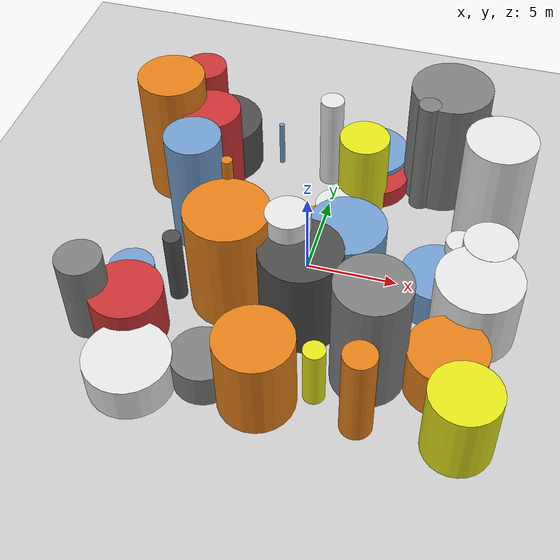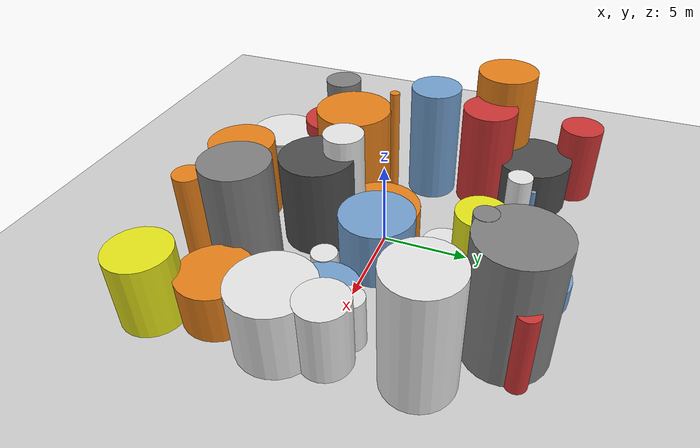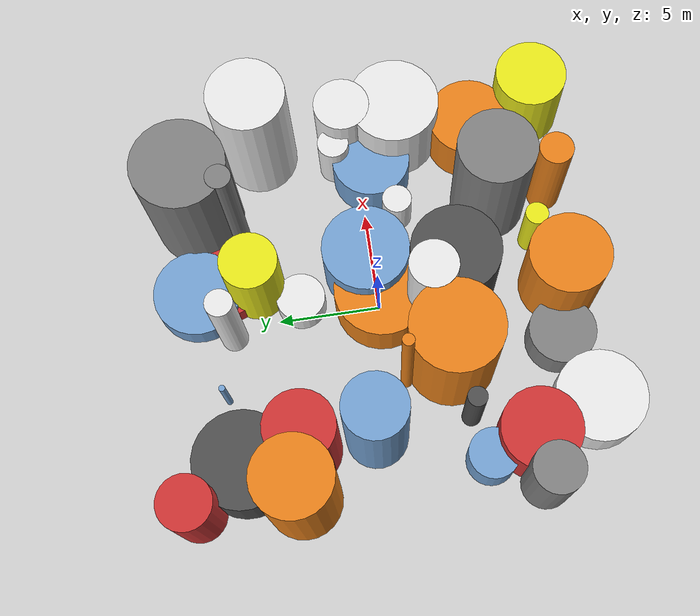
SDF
<?xml version='1.0'?>
<sdf version='1.6'>
  <world name='default'>
    <!-- Sun light -->
    <light name='sun' type='directional'>
      <cast_shadows>1</cast_shadows>
      <pose>0 0 10 0 0 0</pose>
      <diffuse>0.8 0.8 0.8 1</diffuse>
      <specular>0.2 0.2 0.2 1</specular>
      <attenuation>
        <range>1000</range>
        <constant>0.9</constant>
        <linear>0.01</linear>
        <quadratic>0.001</quadratic>
      </attenuation>
      <direction>-0.5 0.1 -0.9</direction>
    </light>

    <!-- Ground plane -->
    <model name='ground_plane'>
      <static>1</static>
      <link name='link'>
        <collision name='collision'>
          <geometry>
            <plane>
              <normal>0 0 1</normal>
              <size>100 100</size>
            </plane>
          </geometry>
          <surface>
            <contact>
              <collide_bitmask>65535</collide_bitmask>
              <ode/>
            </contact>
            <friction>
              <ode>
                <mu>100</mu>
                <mu2>50</mu2>
              </ode>
              <torsional><ode/></torsional>
            </friction>
            <bounce/>
          </surface>
          <max_contacts>10</max_contacts>
        </collision>
        <visual name='visual'>
          <cast_shadows>0</cast_shadows>
          <geometry>
            <plane>
              <normal>0 0 1</normal>
              <size>100 100</size>
            </plane>
          </geometry>
          <material>
            <script>
              <uri>file://media/materials/scripts/gazebo.material</uri>
              <n>Gazebo/Grey</n>
            </script>
          </material>
        </visual>
      </link>
    </model>

    <!-- Environment -->
    <magnetic_field>6e-06 2.3e-05 -4.2e-05</magnetic_field>
    <atmosphere type='adiabatic'/>
    <physics name='default_physics' default='0' type='ode'>
      <gravity>0 0 -9.8</gravity>
      <max_step_size>0.004</max_step_size>
      <real_time_factor>1</real_time_factor>
      <real_time_update_rate>250</real_time_update_rate>
    </physics>
    <scene>
      <ambient>0.4 0.4 0.4 1</ambient>
      <background>0.7 0.7 0.7 1</background>
      <shadows>1</shadows>
    </scene>
    <wind/>
    <spherical_coordinates>
      <surface_model>EARTH_WGS84</surface_model>
      <latitude_deg>0</latitude_deg>
      <longitude_deg>0</longitude_deg>
      <elevation>0</elevation>
      <heading_deg>0</heading_deg>
    </spherical_coordinates>

    <!-- ============ OBSTACLES (38) ============ -->
    <model name='obs_00'>
      <static>1</static>
      <link name='link'>
        <visual name='visual'>
          <geometry>
            <cylinder>
              <radius>1.2027</radius>
              <length>1.4261</length>
            </cylinder>
          </geometry>
          <material>
            <script>
              <n>Gazebo/White</n>
              <uri>file://media/materials/scripts/gazebo.material</uri>
            </script>
            <ambient>0.9 0.9 0.9 1</ambient>
          </material>
        </visual>
        <collision name='collision'>
          <geometry>
            <cylinder>
              <radius>1.2027</radius>
              <length>1.4261</length>
            </cylinder>
          </geometry>
          <max_contacts>10</max_contacts>
          <surface>
            <contact><ode/></contact>
            <bounce/>
            <friction>
              <ode><mu>1</mu><mu2>1</mu2></ode>
              <torsional><ode/></torsional>
            </friction>
          </surface>
        </collision>
      </link>
      <pose>0.7042 3.7722 0.7131 0 0 2.5689</pose>
    </model>

    <model name='obs_01'>
      <static>1</static>
      <link name='link'>
        <visual name='visual'>
          <geometry>
            <cylinder>
              <radius>1.9013</radius>
              <length>7.0422</length>
            </cylinder>
          </geometry>
          <material>
            <script>
              <n>Gazebo/White</n>
              <uri>file://media/materials/scripts/gazebo.material</uri>
            </script>
            <ambient>0.9 0.9 0.9 1</ambient>
          </material>
        </visual>
        <collision name='collision'>
          <geometry>
            <cylinder>
              <radius>1.9013</radius>
              <length>7.0422</length>
            </cylinder>
          </geometry>
          <max_contacts>10</max_contacts>
          <surface>
            <contact><ode/></contact>
            <bounce/>
            <friction>
              <ode><mu>1</mu><mu2>1</mu2></ode>
              <torsional><ode/></torsional>
            </friction>
          </surface>
        </collision>
      </link>
      <pose>9.0936 4.9451 3.5211 0 0 2.9676</pose>
    </model>

    <model name='obs_02'>
      <static>1</static>
      <link name='link'>
        <visual name='visual'>
          <geometry>
            <cylinder>
              <radius>0.1523</radius>
              <length>2.8862</length>
            </cylinder>
          </geometry>
          <material>
            <script>
              <n>Gazebo/Blue</n>
              <uri>file://media/materials/scripts/gazebo.material</uri>
            </script>
            <ambient>0.447 0.624 0.812 1</ambient>
          </material>
        </visual>
        <collision name='collision'>
          <geometry>
            <cylinder>
              <radius>0.1523</radius>
              <length>2.8862</length>
            </cylinder>
          </geometry>
          <max_contacts>10</max_contacts>
          <surface>
            <contact><ode/></contact>
            <bounce/>
            <friction>
              <ode><mu>1</mu><mu2>1</mu2></ode>
              <torsional><ode/></torsional>
            </friction>
          </surface>
        </collision>
      </link>
      <pose>-3.6597 7.8682 1.4431 0 0 0.0077</pose>
    </model>

    <model name='obs_03'>
      <static>1</static>
      <link name='link'>
        <visual name='visual'>
          <geometry>
            <cylinder>
              <radius>0.8286</radius>
              <length>5.6083</length>
            </cylinder>
          </geometry>
          <material>
            <script>
              <n>Gazebo/Orange</n>
              <uri>file://media/materials/scripts/gazebo.material</uri>
            </script>
            <ambient>0.9 0.5 0.1 1</ambient>
          </material>
        </visual>
        <collision name='collision'>
          <geometry>
            <cylinder>
              <radius>0.8286</radius>
              <length>5.6083</length>
            </cylinder>
          </geometry>
          <max_contacts>10</max_contacts>
          <surface>
            <contact><ode/></contact>
            <bounce/>
            <friction>
              <ode><mu>1</mu><mu2>1</mu2></ode>
              <torsional><ode/></torsional>
            </friction>
          </surface>
        </collision>
      </link>
      <pose>4.8757 -9.2763 2.8042 0 0 2.5808</pose>
    </model>

    <model name='obs_04'>
      <static>1</static>
      <link name='link'>
        <visual name='visual'>
          <geometry>
            <cylinder>
              <radius>0.7316</radius>
              <length>2.3371</length>
            </cylinder>
          </geometry>
          <material>
            <script>
              <n>Gazebo/White</n>
              <uri>file://media/materials/scripts/gazebo.material</uri>
            </script>
            <ambient>0.9 0.9 0.9 1</ambient>
          </material>
        </visual>
        <collision name='collision'>
          <geometry>
            <cylinder>
              <radius>0.7316</radius>
              <length>2.3371</length>
            </cylinder>
          </geometry>
          <max_contacts>10</max_contacts>
          <surface>
            <contact><ode/></contact>
            <bounce/>
            <friction>
              <ode><mu>1</mu><mu2>1</mu2></ode>
              <torsional><ode/></torsional>
            </friction>
          </surface>
        </collision>
      </link>
      <pose>4.8049 -1.6196 1.1686 0 0 2.0123</pose>
    </model>

    <model name='obs_05'>
      <static>1</static>
      <link name='link'>
        <visual name='visual'>
          <geometry>
            <cylinder>
              <radius>1.8842</radius>
              <length>1.0901</length>
            </cylinder>
          </geometry>
          <material>
            <script>
              <n>Gazebo/Red</n>
              <uri>file://media/materials/scripts/gazebo.material</uri>
            </script>
            <ambient>0.8 0.2 0.2 1</ambient>
          </material>
        </visual>
        <collision name='collision'>
          <geometry>
            <cylinder>
              <radius>1.8842</radius>
              <length>1.0901</length>
            </cylinder>
          </geometry>
          <max_contacts>10</max_contacts>
          <surface>
            <contact><ode/></contact>
            <bounce/>
            <friction>
              <ode><mu>1</mu><mu2>1</mu2></ode>
              <torsional><ode/></torsional>
            </friction>
          </surface>
        </collision>
      </link>
      <pose>2.2570 7.2661 0.5451 0 0 1.5188</pose>
    </model>

    <model name='obs_06'>
      <static>1</static>
      <link name='link'>
        <visual name='visual'>
          <geometry>
            <cylinder>
              <radius>2.2123</radius>
              <length>2.1150</length>
            </cylinder>
          </geometry>
          <material>
            <script>
              <n>Gazebo/White</n>
              <uri>file://media/materials/scripts/gazebo.material</uri>
            </script>
            <ambient>0.9 0.9 0.9 1</ambient>
          </material>
        </visual>
        <collision name='collision'>
          <geometry>
            <cylinder>
              <radius>2.2123</radius>
              <length>2.1150</length>
            </cylinder>
          </geometry>
          <max_contacts>10</max_contacts>
          <surface>
            <contact><ode/></contact>
            <bounce/>
            <friction>
              <ode><mu>1</mu><mu2>1</mu2></ode>
              <torsional><ode/></torsional>
            </friction>
          </surface>
        </collision>
      </link>
      <pose>-6.4150 -9.6980 1.0575 0 0 2.1994</pose>
    </model>

    <model name='obs_07'>
      <static>1</static>
      <link name='link'>
        <visual name='visual'>
          <geometry>
            <cylinder>
              <radius>0.5652</radius>
              <length>4.6855</length>
            </cylinder>
          </geometry>
          <material>
            <script>
              <n>Gazebo/Red</n>
              <uri>file://media/materials/scripts/gazebo.material</uri>
            </script>
            <ambient>0.8 0.2 0.2 1</ambient>
          </material>
        </visual>
        <collision name='collision'>
          <geometry>
            <cylinder>
              <radius>0.5652</radius>
              <length>4.6855</length>
            </cylinder>
          </geometry>
          <max_contacts>10</max_contacts>
          <surface>
            <contact><ode/></contact>
            <bounce/>
            <friction>
              <ode><mu>1</mu><mu2>1</mu2></ode>
              <torsional><ode/></torsional>
            </friction>
          </surface>
        </collision>
      </link>
      <pose>7.8206 9.2609 2.3427 0 0 1.3193</pose>
    </model>

    <model name='obs_08'>
      <static>1</static>
      <link name='link'>
        <visual name='visual'>
          <geometry>
            <cylinder>
              <radius>1.3919</radius>
              <length>4.0744</length>
            </cylinder>
          </geometry>
          <material>
            <script>
              <n>Gazebo/White</n>
              <uri>file://media/materials/scripts/gazebo.material</uri>
            </script>
            <ambient>0.9 0.9 0.9 1</ambient>
          </material>
        </visual>
        <collision name='collision'>
          <geometry>
            <cylinder>
              <radius>1.3919</radius>
              <length>4.0744</length>
            </cylinder>
          </geometry>
          <max_contacts>10</max_contacts>
          <surface>
            <contact><ode/></contact>
            <bounce/>
            <friction>
              <ode><mu>1</mu><mu2>1</mu2></ode>
              <torsional><ode/></torsional>
            </friction>
          </surface>
        </collision>
      </link>
      <pose>9.4860 0.4892 2.0372 0 0 3.0021</pose>
    </model>

    <model name='obs_09'>
      <static>1</static>
      <link name='link'>
        <visual name='visual'>
          <geometry>
            <cylinder>
              <radius>0.4713</radius>
              <length>4.3853</length>
            </cylinder>
          </geometry>
          <material>
            <script>
              <n>Gazebo/DarkGrey</n>
              <uri>file://media/materials/scripts/gazebo.material</uri>
            </script>
            <ambient>0.3 0.3 0.3 1</ambient>
          </material>
        </visual>
        <collision name='collision'>
          <geometry>
            <cylinder>
              <radius>0.4713</radius>
              <length>4.3853</length>
            </cylinder>
          </geometry>
          <max_contacts>10</max_contacts>
          <surface>
            <contact><ode/></contact>
            <bounce/>
            <friction>
              <ode><mu>1</mu><mu2>1</mu2></ode>
              <torsional><ode/></torsional>
            </friction>
          </surface>
        </collision>
      </link>
      <pose>-6.1179 -3.6463 2.1926 0 0 0.9460</pose>
    </model>

    <model name='obs_10'>
      <static>1</static>
      <link name='link'>
        <visual name='visual'>
          <geometry>
            <cylinder>
              <radius>0.6115</radius>
              <length>7.2085</length>
            </cylinder>
          </geometry>
          <material>
            <script>
              <n>Gazebo/Grey</n>
              <uri>file://media/materials/scripts/gazebo.material</uri>
            </script>
            <ambient>0.5 0.5 0.5 1</ambient>
          </material>
        </visual>
        <collision name='collision'>
          <geometry>
            <cylinder>
              <radius>0.6115</radius>
              <length>7.2085</length>
            </cylinder>
          </geometry>
          <max_contacts>10</max_contacts>
          <surface>
            <contact><ode/></contact>
            <bounce/>
            <friction>
              <ode><mu>1</mu><mu2>1</mu2></ode>
              <torsional><ode/></torsional>
            </friction>
          </surface>
        </collision>
      </link>
      <pose>5.0071 6.5781 3.6042 0 0 2.8486</pose>
    </model>

    <model name='obs_11'>
      <static>1</static>
      <link name='link'>
        <visual name='visual'>
          <geometry>
            <cylinder>
              <radius>1.6394</radius>
              <length>6.1997</length>
            </cylinder>
          </geometry>
          <material>
            <script>
              <n>Gazebo/Red</n>
              <uri>file://media/materials/scripts/gazebo.material</uri>
            </script>
            <ambient>0.8 0.2 0.2 1</ambient>
          </material>
        </visual>
        <collision name='collision'>
          <geometry>
            <cylinder>
              <radius>1.6394</radius>
              <length>6.1997</length>
            </cylinder>
          </geometry>
          <max_contacts>10</max_contacts>
          <surface>
            <contact><ode/></contact>
            <bounce/>
            <friction>
              <ode><mu>1</mu><mu2>1</mu2></ode>
              <torsional><ode/></torsional>
            </friction>
          </surface>
        </collision>
      </link>
      <pose>-6.6351 4.3709 3.0999 0 0 0.3177</pose>
    </model>

    <model name='obs_12'>
      <static>1</static>
      <link name='link'>
        <visual name='visual'>
          <geometry>
            <cylinder>
              <radius>2.2417</radius>
              <length>4.0628</length>
            </cylinder>
          </geometry>
          <material>
            <script>
              <n>Gazebo/White</n>
              <uri>file://media/materials/scripts/gazebo.material</uri>
            </script>
            <ambient>0.9 0.9 0.9 1</ambient>
          </material>
        </visual>
        <collision name='collision'>
          <geometry>
            <cylinder>
              <radius>2.2417</radius>
              <length>4.0628</length>
            </cylinder>
          </geometry>
          <max_contacts>10</max_contacts>
          <surface>
            <contact><ode/></contact>
            <bounce/>
            <friction>
              <ode><mu>1</mu><mu2>1</mu2></ode>
              <torsional><ode/></torsional>
            </friction>
          </surface>
        </collision>
      </link>
      <pose>9.3354 -2.1145 2.0314 0 0 3.0868</pose>
    </model>

    <model name='obs_13'>
      <static>1</static>
      <link name='link'>
        <visual name='visual'>
          <geometry>
            <cylinder>
              <radius>2.0413</radius>
              <length>2.8706</length>
            </cylinder>
          </geometry>
          <material>
            <script>
              <n>Gazebo/Orange</n>
              <uri>file://media/materials/scripts/gazebo.material</uri>
            </script>
            <ambient>0.9 0.5 0.1 1</ambient>
          </material>
        </visual>
        <collision name='collision'>
          <geometry>
            <cylinder>
              <radius>2.0413</radius>
              <length>2.8706</length>
            </cylinder>
          </geometry>
          <max_contacts>10</max_contacts>
          <surface>
            <contact><ode/></contact>
            <bounce/>
            <friction>
              <ode><mu>1</mu><mu2>1</mu2></ode>
              <torsional><ode/></torsional>
            </friction>
          </surface>
        </collision>
      </link>
      <pose>8.4927 -5.8458 1.4353 0 0 2.9599</pose>
    </model>

    <model name='obs_14'>
      <static>1</static>
      <link name='link'>
        <visual name='visual'>
          <geometry>
            <cylinder>
              <radius>2.3416</radius>
              <length>2.5708</length>
            </cylinder>
          </geometry>
          <material>
            <script>
              <n>Gazebo/Orange</n>
              <uri>file://media/materials/scripts/gazebo.material</uri>
            </script>
            <ambient>0.9 0.5 0.1 1</ambient>
          </material>
        </visual>
        <collision name='collision'>
          <geometry>
            <cylinder>
              <radius>2.3416</radius>
              <length>2.5708</length>
            </cylinder>
          </geometry>
          <max_contacts>10</max_contacts>
          <surface>
            <contact><ode/></contact>
            <bounce/>
            <friction>
              <ode><mu>1</mu><mu2>1</mu2></ode>
              <torsional><ode/></torsional>
            </friction>
          </surface>
        </collision>
      </link>
      <pose>0.1953 -0.2044 1.2854 0 0 2.1577</pose>
    </model>

    <model name='obs_15'>
      <static>1</static>
      <link name='link'>
        <visual name='visual'>
          <geometry>
            <cylinder>
              <radius>1.9770</radius>
              <length>4.8441</length>
            </cylinder>
          </geometry>
          <material>
            <script>
              <n>Gazebo/Orange</n>
              <uri>file://media/materials/scripts/gazebo.material</uri>
            </script>
            <ambient>0.9 0.5 0.1 1</ambient>
          </material>
        </visual>
        <collision name='collision'>
          <geometry>
            <cylinder>
              <radius>1.9770</radius>
              <length>4.8441</length>
            </cylinder>
          </geometry>
          <max_contacts>10</max_contacts>
          <surface>
            <contact><ode/></contact>
            <bounce/>
            <friction>
              <ode><mu>1</mu><mu2>1</mu2></ode>
              <torsional><ode/></torsional>
            </friction>
          </surface>
        </collision>
      </link>
      <pose>-0.1241 -9.0643 2.4220 0 0 2.5968</pose>
    </model>

    <model name='obs_16'>
      <static>1</static>
      <link name='link'>
        <visual name='visual'>
          <geometry>
            <cylinder>
              <radius>2.3058</radius>
              <length>3.0902</length>
            </cylinder>
          </geometry>
          <material>
            <script>
              <n>Gazebo/DarkGrey</n>
              <uri>file://media/materials/scripts/gazebo.material</uri>
            </script>
            <ambient>0.3 0.3 0.3 1</ambient>
          </material>
        </visual>
        <collision name='collision'>
          <geometry>
            <cylinder>
              <radius>2.3058</radius>
              <length>3.0902</length>
            </cylinder>
          </geometry>
          <max_contacts>10</max_contacts>
          <surface>
            <contact><ode/></contact>
            <bounce/>
            <friction>
              <ode><mu>1</mu><mu2>1</mu2></ode>
              <torsional><ode/></torsional>
            </friction>
          </surface>
        </collision>
      </link>
      <pose>-7.1207 7.2953 1.5451 0 0 0.1150</pose>
    </model>

    <model name='obs_17'>
      <static>1</static>
      <link name='link'>
        <visual name='visual'>
          <geometry>
            <cylinder>
              <radius>1.9365</radius>
              <length>3.0745</length>
            </cylinder>
          </geometry>
          <material>
            <script>
              <n>Gazebo/Red</n>
              <uri>file://media/materials/scripts/gazebo.material</uri>
            </script>
            <ambient>0.8 0.2 0.2 1</ambient>
          </material>
        </visual>
        <collision name='collision'>
          <geometry>
            <cylinder>
              <radius>1.9365</radius>
              <length>3.0745</length>
            </cylinder>
          </geometry>
          <max_contacts>10</max_contacts>
          <surface>
            <contact><ode/></contact>
            <bounce/>
            <friction>
              <ode><mu>1</mu><mu2>1</mu2></ode>
              <torsional><ode/></torsional>
            </friction>
          </surface>
        </collision>
      </link>
      <pose>-7.6773 -6.4762 1.5373 0 0 2.5566</pose>
    </model>

    <model name='obs_18'>
      <static>1</static>
      <link name='link'>
        <visual name='visual'>
          <geometry>
            <cylinder>
              <radius>0.7812</radius>
              <length>3.0033</length>
            </cylinder>
          </geometry>
          <material>
            <script>
              <n>Gazebo/White</n>
              <uri>file://media/materials/scripts/gazebo.material</uri>
            </script>
            <ambient>0.9 0.9 0.9 1</ambient>
          </material>
        </visual>
        <collision name='collision'>
          <geometry>
            <cylinder>
              <radius>0.7812</radius>
              <length>3.0033</length>
            </cylinder>
          </geometry>
          <max_contacts>10</max_contacts>
          <surface>
            <contact><ode/></contact>
            <bounce/>
            <friction>
              <ode><mu>1</mu><mu2>1</mu2></ode>
              <torsional><ode/></torsional>
            </friction>
          </surface>
        </collision>
      </link>
      <pose>7.9636 1.1494 1.5017 0 0 0.3745</pose>
    </model>

    <model name='obs_19'>
      <static>1</static>
      <link name='link'>
        <visual name='visual'>
          <geometry>
            <cylinder>
              <radius>0.2863</radius>
              <length>7.5813</length>
            </cylinder>
          </geometry>
          <material>
            <script>
              <n>Gazebo/Orange</n>
              <uri>file://media/materials/scripts/gazebo.material</uri>
            </script>
            <ambient>0.9 0.5 0.1 1</ambient>
          </material>
        </visual>
        <collision name='collision'>
          <geometry>
            <cylinder>
              <radius>0.2863</radius>
              <length>7.5813</length>
            </cylinder>
          </geometry>
          <max_contacts>10</max_contacts>
          <surface>
            <contact><ode/></contact>
            <bounce/>
            <friction>
              <ode><mu>1</mu><mu2>1</mu2></ode>
              <torsional><ode/></torsional>
            </friction>
          </surface>
        </collision>
      </link>
      <pose>-3.9358 -0.7941 3.7907 0 0 3.0242</pose>
    </model>

    <model name='obs_20'>
      <static>1</static>
      <link name='link'>
        <visual name='visual'>
          <geometry>
            <cylinder>
              <radius>1.1628</radius>
              <length>6.5339</length>
            </cylinder>
          </geometry>
          <material>
            <script>
              <n>Gazebo/White</n>
              <uri>file://media/materials/scripts/gazebo.material</uri>
            </script>
            <ambient>0.9 0.9 0.9 1</ambient>
          </material>
        </visual>
        <collision name='collision'>
          <geometry>
            <cylinder>
              <radius>1.1628</radius>
              <length>6.5339</length>
            </cylinder>
          </geometry>
          <max_contacts>10</max_contacts>
          <surface>
            <contact><ode/></contact>
            <bounce/>
            <friction>
              <ode><mu>1</mu><mu2>1</mu2></ode>
              <torsional><ode/></torsional>
            </friction>
          </surface>
        </collision>
      </link>
      <pose>-0.3161 -2.5260 3.2669 0 0 2.6132</pose>
    </model>

    <model name='obs_21'>
      <static>1</static>
      <link name='link'>
        <visual name='visual'>
          <geometry>
            <cylinder>
              <radius>1.7631</radius>
              <length>4.2858</length>
            </cylinder>
          </geometry>
          <material>
            <script>
              <n>Gazebo/Yellow</n>
              <uri>file://media/materials/scripts/gazebo.material</uri>
            </script>
            <ambient>0.9 0.9 0.1 1</ambient>
          </material>
        </visual>
        <collision name='collision'>
          <geometry>
            <cylinder>
              <radius>1.7631</radius>
              <length>4.2858</length>
            </cylinder>
          </geometry>
          <max_contacts>10</max_contacts>
          <surface>
            <contact><ode/></contact>
            <bounce/>
            <friction>
              <ode><mu>1</mu><mu2>1</mu2></ode>
              <torsional><ode/></torsional>
            </friction>
          </surface>
        </collision>
      </link>
      <pose>9.6809 -9.0983 2.1429 0 0 0.7169</pose>
    </model>

    <model name='obs_22'>
      <static>1</static>
      <link name='link'>
        <visual name='visual'>
          <geometry>
            <cylinder>
              <radius>1.6397</radius>
              <length>2.0125</length>
            </cylinder>
          </geometry>
          <material>
            <script>
              <n>Gazebo/Grey</n>
              <uri>file://media/materials/scripts/gazebo.material</uri>
            </script>
            <ambient>0.5 0.5 0.5 1</ambient>
          </material>
        </visual>
        <collision name='collision'>
          <geometry>
            <cylinder>
              <radius>1.6397</radius>
              <length>2.0125</length>
            </cylinder>
          </geometry>
          <max_contacts>10</max_contacts>
          <surface>
            <contact><ode/></contact>
            <bounce/>
            <friction>
              <ode><mu>1</mu><mu2>1</mu2></ode>
              <torsional><ode/></torsional>
            </friction>
          </surface>
        </collision>
      </link>
      <pose>-2.9750 -8.5227 1.0062 0 0 0.0679</pose>
    </model>

    <model name='obs_23'>
      <static>1</static>
      <link name='link'>
        <visual name='visual'>
          <geometry>
            <cylinder>
              <radius>0.5654</radius>
              <length>3.6439</length>
            </cylinder>
          </geometry>
          <material>
            <script>
              <n>Gazebo/Yellow</n>
              <uri>file://media/materials/scripts/gazebo.material</uri>
            </script>
            <ambient>0.9 0.9 0.1 1</ambient>
          </material>
        </visual>
        <collision name='collision'>
          <geometry>
            <cylinder>
              <radius>0.5654</radius>
              <length>3.6439</length>
            </cylinder>
          </geometry>
          <max_contacts>10</max_contacts>
          <surface>
            <contact><ode/></contact>
            <bounce/>
            <friction>
              <ode><mu>1</mu><mu2>1</mu2></ode>
              <torsional><ode/></torsional>
            </friction>
          </surface>
        </collision>
      </link>
      <pose>2.5008 -8.1127 1.8220 0 0 0.2993</pose>
    </model>

    <model name='obs_24'>
      <static>1</static>
      <link name='link'>
        <visual name='visual'>
          <geometry>
            <cylinder>
              <radius>2.2030</radius>
              <length>6.5203</length>
            </cylinder>
          </geometry>
          <material>
            <script>
              <n>Gazebo/Orange</n>
              <uri>file://media/materials/scripts/gazebo.material</uri>
            </script>
            <ambient>0.9 0.5 0.1 1</ambient>
          </material>
        </visual>
        <collision name='collision'>
          <geometry>
            <cylinder>
              <radius>2.2030</radius>
              <length>6.5203</length>
            </cylinder>
          </geometry>
          <max_contacts>10</max_contacts>
          <surface>
            <contact><ode/></contact>
            <bounce/>
            <friction>
              <ode><mu>1</mu><mu2>1</mu2></ode>
              <torsional><ode/></torsional>
            </friction>
          </surface>
        </collision>
      </link>
      <pose>-3.2700 -3.0958 3.2602 0 0 0.9233</pose>
    </model>

    <model name='obs_25'>
      <static>1</static>
      <link name='link'>
        <visual name='visual'>
          <geometry>
            <cylinder>
              <radius>1.8933</radius>
              <length>6.9933</length>
            </cylinder>
          </geometry>
          <material>
            <script>
              <n>Gazebo/Grey</n>
              <uri>file://media/materials/scripts/gazebo.material</uri>
            </script>
            <ambient>0.5 0.5 0.5 1</ambient>
          </material>
        </visual>
        <collision name='collision'>
          <geometry>
            <cylinder>
              <radius>1.8933</radius>
              <length>6.9933</length>
            </cylinder>
          </geometry>
          <max_contacts>10</max_contacts>
          <surface>
            <contact><ode/></contact>
            <bounce/>
            <friction>
              <ode><mu>1</mu><mu2>1</mu2></ode>
              <torsional><ode/></torsional>
            </friction>
          </surface>
        </collision>
      </link>
      <pose>4.7537 -6.2957 3.4967 0 0 3.0860</pose>
    </model>

    <model name='obs_26'>
      <static>1</static>
      <link name='link'>
        <visual name='visual'>
          <geometry>
            <cylinder>
              <radius>2.1480</radius>
              <length>1.4003</length>
            </cylinder>
          </geometry>
          <material>
            <script>
              <n>Gazebo/Blue</n>
              <uri>file://media/materials/scripts/gazebo.material</uri>
            </script>
            <ambient>0.447 0.624 0.812 1</ambient>
          </material>
        </visual>
        <collision name='collision'>
          <geometry>
            <cylinder>
              <radius>2.1480</radius>
              <length>1.4003</length>
            </cylinder>
          </geometry>
          <max_contacts>10</max_contacts>
          <surface>
            <contact><ode/></contact>
            <bounce/>
            <friction>
              <ode><mu>1</mu><mu2>1</mu2></ode>
              <torsional><ode/></torsional>
            </friction>
          </surface>
        </collision>
      </link>
      <pose>1.6868 8.7831 0.7002 0 0 1.0566</pose>
    </model>

    <model name='obs_27'>
      <static>1</static>
      <link name='link'>
        <visual name='visual'>
          <geometry>
            <cylinder>
              <radius>1.2719</radius>
              <length>4.7626</length>
            </cylinder>
          </geometry>
          <material>
            <script>
              <n>Gazebo/Red</n>
              <uri>file://media/materials/scripts/gazebo.material</uri>
            </script>
            <ambient>0.8 0.2 0.2 1</ambient>
          </material>
        </visual>
        <collision name='collision'>
          <geometry>
            <cylinder>
              <radius>1.2719</radius>
              <length>4.7626</length>
            </cylinder>
          </geometry>
          <max_contacts>10</max_contacts>
          <surface>
            <contact><ode/></contact>
            <bounce/>
            <friction>
              <ode><mu>1</mu><mu2>1</mu2></ode>
              <torsional><ode/></torsional>
            </friction>
          </surface>
        </collision>
      </link>
      <pose>-8.9289 9.7652 2.3813 0 0 2.6696</pose>
    </model>

    <model name='obs_28'>
      <static>1</static>
      <link name='link'>
        <visual name='visual'>
          <geometry>
            <cylinder>
              <radius>1.2059</radius>
              <length>2.1713</length>
            </cylinder>
          </geometry>
          <material>
            <script>
              <n>Gazebo/Blue</n>
              <uri>file://media/materials/scripts/gazebo.material</uri>
            </script>
            <ambient>0.447 0.624 0.812 1</ambient>
          </material>
        </visual>
        <collision name='collision'>
          <geometry>
            <cylinder>
              <radius>1.2059</radius>
              <length>2.1713</length>
            </cylinder>
          </geometry>
          <max_contacts>10</max_contacts>
          <surface>
            <contact><ode/></contact>
            <bounce/>
            <friction>
              <ode><mu>1</mu><mu2>1</mu2></ode>
              <torsional><ode/></torsional>
            </friction>
          </surface>
        </collision>
      </link>
      <pose>-8.3620 -4.1981 1.0857 0 0 1.9688</pose>
    </model>

    <model name='obs_29'>
      <static>1</static>
      <link name='link'>
        <visual name='visual'>
          <geometry>
            <cylinder>
              <radius>0.6595</radius>
              <length>5.8159</length>
            </cylinder>
          </geometry>
          <material>
            <script>
              <n>Gazebo/White</n>
              <uri>file://media/materials/scripts/gazebo.material</uri>
            </script>
            <ambient>0.9 0.9 0.9 1</ambient>
          </material>
        </visual>
        <collision name='collision'>
          <geometry>
            <cylinder>
              <radius>0.6595</radius>
              <length>5.8159</length>
            </cylinder>
          </geometry>
          <max_contacts>10</max_contacts>
          <surface>
            <contact><ode/></contact>
            <bounce/>
            <friction>
              <ode><mu>1</mu><mu2>1</mu2></ode>
              <torsional><ode/></torsional>
            </friction>
          </surface>
        </collision>
      </link>
      <pose>-0.4977 7.2854 2.9080 0 0 1.7612</pose>
    </model>

    <model name='obs_30'>
      <static>1</static>
      <link name='link'>
        <visual name='visual'>
          <geometry>
            <cylinder>
              <radius>2.1360</radius>
              <length>3.4597</length>
            </cylinder>
          </geometry>
          <material>
            <script>
              <n>Gazebo/Blue</n>
              <uri>file://media/materials/scripts/gazebo.material</uri>
            </script>
            <ambient>0.447 0.624 0.812 1</ambient>
          </material>
        </visual>
        <collision name='collision'>
          <geometry>
            <cylinder>
              <radius>2.1360</radius>
              <length>3.4597</length>
            </cylinder>
          </geometry>
          <max_contacts>10</max_contacts>
          <surface>
            <contact><ode/></contact>
            <bounce/>
            <friction>
              <ode><mu>1</mu><mu2>1</mu2></ode>
              <torsional><ode/></torsional>
            </friction>
          </surface>
        </collision>
      </link>
      <pose>2.0627 0.3149 1.7298 0 0 2.0066</pose>
    </model>

    <model name='obs_31'>
      <static>1</static>
      <link name='link'>
        <visual name='visual'>
          <geometry>
            <cylinder>
              <radius>2.2382</radius>
              <length>7.1937</length>
            </cylinder>
          </geometry>
          <material>
            <script>
              <n>Gazebo/Grey</n>
              <uri>file://media/materials/scripts/gazebo.material</uri>
            </script>
            <ambient>0.5 0.5 0.5 1</ambient>
          </material>
        </visual>
        <collision name='collision'>
          <geometry>
            <cylinder>
              <radius>2.2382</radius>
              <length>7.1937</length>
            </cylinder>
          </geometry>
          <max_contacts>10</max_contacts>
          <surface>
            <contact><ode/></contact>
            <bounce/>
            <friction>
              <ode><mu>1</mu><mu2>1</mu2></ode>
              <torsional><ode/></torsional>
            </friction>
          </surface>
        </collision>
      </link>
      <pose>5.9450 8.3547 3.5969 0 0 2.2167</pose>
    </model>

    <model name='obs_32'>
      <static>1</static>
      <link name='link'>
        <visual name='visual'>
          <geometry>
            <cylinder>
              <radius>2.1491</radius>
              <length>5.4268</length>
            </cylinder>
          </geometry>
          <material>
            <script>
              <n>Gazebo/DarkGrey</n>
              <uri>file://media/materials/scripts/gazebo.material</uri>
            </script>
            <ambient>0.3 0.3 0.3 1</ambient>
          </material>
        </visual>
        <collision name='collision'>
          <geometry>
            <cylinder>
              <radius>2.1491</radius>
              <length>5.4268</length>
            </cylinder>
          </geometry>
          <max_contacts>10</max_contacts>
          <surface>
            <contact><ode/></contact>
            <bounce/>
            <friction>
              <ode><mu>1</mu><mu2>1</mu2></ode>
              <torsional><ode/></torsional>
            </friction>
          </surface>
        </collision>
      </link>
      <pose>0.6648 -3.7595 2.7134 0 0 0.3100</pose>
    </model>

    <model name='obs_33'>
      <static>1</static>
      <link name='link'>
        <visual name='visual'>
          <geometry>
            <cylinder>
              <radius>1.3946</radius>
              <length>4.7763</length>
            </cylinder>
          </geometry>
          <material>
            <script>
              <n>Gazebo/Yellow</n>
              <uri>file://media/materials/scripts/gazebo.material</uri>
            </script>
            <ambient>0.9 0.9 0.1 1</ambient>
          </material>
        </visual>
        <collision name='collision'>
          <geometry>
            <cylinder>
              <radius>1.3946</radius>
              <length>4.7763</length>
            </cylinder>
          </geometry>
          <max_contacts>10</max_contacts>
          <surface>
            <contact><ode/></contact>
            <bounce/>
            <friction>
              <ode><mu>1</mu><mu2>1</mu2></ode>
              <torsional><ode/></torsional>
            </friction>
          </surface>
        </collision>
      </link>
      <pose>1.7143 5.8645 2.3881 0 0 0.1456</pose>
    </model>

    <model name='obs_34'>
      <static>1</static>
      <link name='link'>
        <visual name='visual'>
          <geometry>
            <cylinder>
              <radius>1.2050</radius>
              <length>4.8870</length>
            </cylinder>
          </geometry>
          <material>
            <script>
              <n>Gazebo/Grey</n>
              <uri>file://media/materials/scripts/gazebo.material</uri>
            </script>
            <ambient>0.5 0.5 0.5 1</ambient>
          </material>
        </visual>
        <collision name='collision'>
          <geometry>
            <cylinder>
              <radius>1.2050</radius>
              <length>4.8870</length>
            </cylinder>
          </geometry>
          <max_contacts>10</max_contacts>
          <surface>
            <contact><ode/></contact>
            <bounce/>
            <friction>
              <ode><mu>1</mu><mu2>1</mu2></ode>
              <torsional><ode/></torsional>
            </friction>
          </surface>
        </collision>
      </link>
      <pose>-9.8380 -6.5913 2.4435 0 0 1.8684</pose>
    </model>

    <model name='obs_35'>
      <static>1</static>
      <link name='link'>
        <visual name='visual'>
          <geometry>
            <cylinder>
              <radius>1.5143</radius>
              <length>7.1188</length>
            </cylinder>
          </geometry>
          <material>
            <script>
              <n>Gazebo/Blue</n>
              <uri>file://media/materials/scripts/gazebo.material</uri>
            </script>
            <ambient>0.447 0.624 0.812 1</ambient>
          </material>
        </visual>
        <collision name='collision'>
          <geometry>
            <cylinder>
              <radius>1.5143</radius>
              <length>7.1188</length>
            </cylinder>
          </geometry>
          <max_contacts>10</max_contacts>
          <surface>
            <contact><ode/></contact>
            <bounce/>
            <friction>
              <ode><mu>1</mu><mu2>1</mu2></ode>
              <torsional><ode/></torsional>
            </friction>
          </surface>
        </collision>
      </link>
      <pose>-6.4483 1.0172 3.5594 0 0 0.0514</pose>
    </model>

    <model name='obs_36'>
      <static>1</static>
      <link name='link'>
        <visual name='visual'>
          <geometry>
            <cylinder>
              <radius>1.8271</radius>
              <length>7.6646</length>
            </cylinder>
          </geometry>
          <material>
            <script>
              <n>Gazebo/Orange</n>
              <uri>file://media/materials/scripts/gazebo.material</uri>
            </script>
            <ambient>0.9 0.5 0.1 1</ambient>
          </material>
        </visual>
        <collision name='collision'>
          <geometry>
            <cylinder>
              <radius>1.8271</radius>
              <length>7.6646</length>
            </cylinder>
          </geometry>
          <max_contacts>10</max_contacts>
          <surface>
            <contact><ode/></contact>
            <bounce/>
            <friction>
              <ode><mu>1</mu><mu2>1</mu2></ode>
              <torsional><ode/></torsional>
            </friction>
          </surface>
        </collision>
      </link>
      <pose>-8.9582 4.8396 3.8323 0 0 0.4623</pose>
    </model>

    <model name='obs_37'>
      <static>1</static>
      <link name='link'>
        <visual name='visual'>
          <geometry>
            <cylinder>
              <radius>1.9478</radius>
              <length>2.2875</length>
            </cylinder>
          </geometry>
          <material>
            <script>
              <n>Gazebo/Blue</n>
              <uri>file://media/materials/scripts/gazebo.material</uri>
            </script>
            <ambient>0.447 0.624 0.812 1</ambient>
          </material>
        </visual>
        <collision name='collision'>
          <geometry>
            <cylinder>
              <radius>1.9478</radius>
              <length>2.2875</length>
            </cylinder>
          </geometry>
          <max_contacts>10</max_contacts>
          <surface>
            <contact><ode/></contact>
            <bounce/>
            <friction>
              <ode><mu>1</mu><mu2>1</mu2></ode>
              <torsional><ode/></torsional>
            </friction>
          </surface>
        </collision>
      </link>
      <pose>7.1632 -0.6329 1.1437 0 0 3.0536</pose>
    </model>

    <!-- GUI camera -->
    <gui fullscreen='0'>
      <camera name='user_camera'>
        <pose>-15 0 18 0 0.85 0.15</pose>
        <view_controller>orbit</view_controller>
        <projection_type>perspective</projection_type>
      </camera>
    </gui>
  </world>
</sdf>
